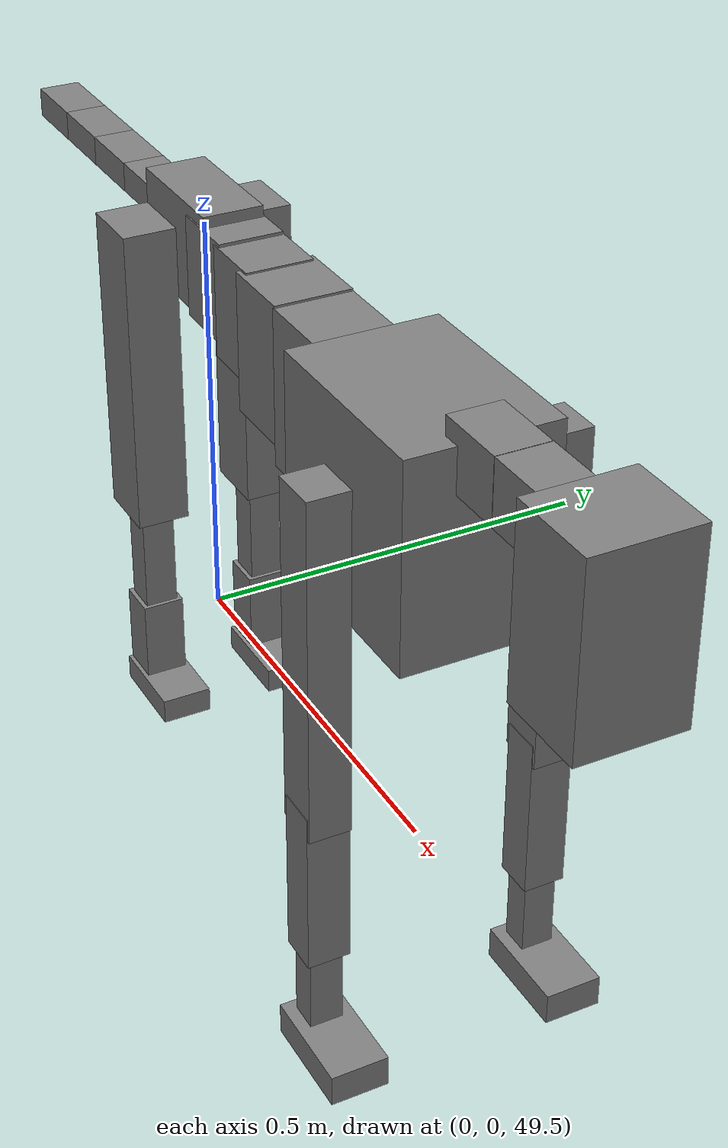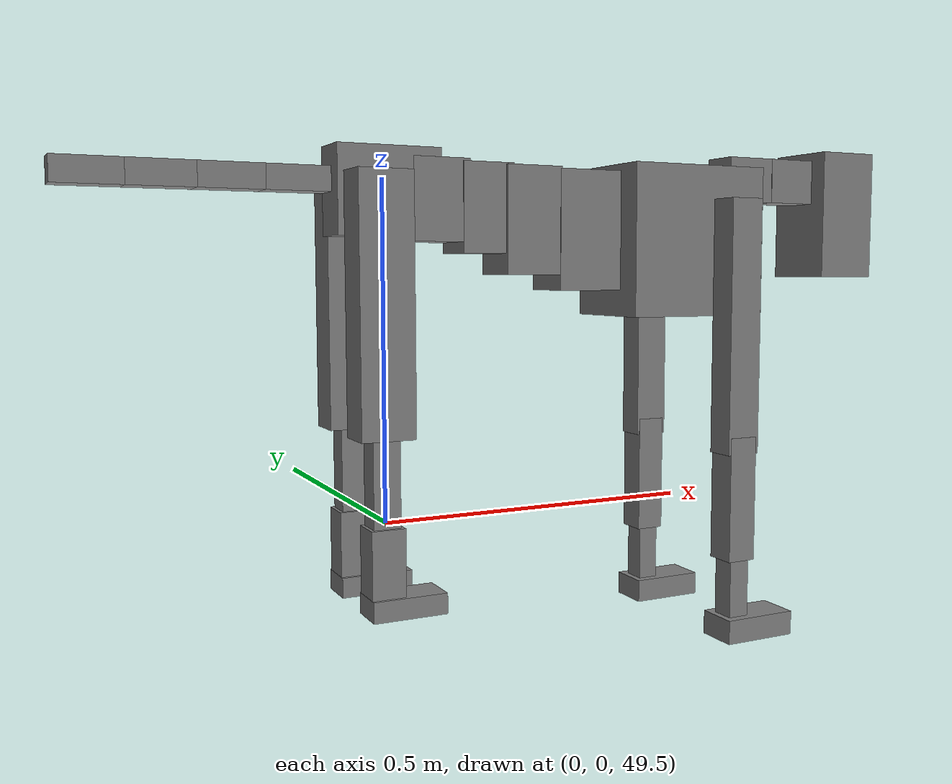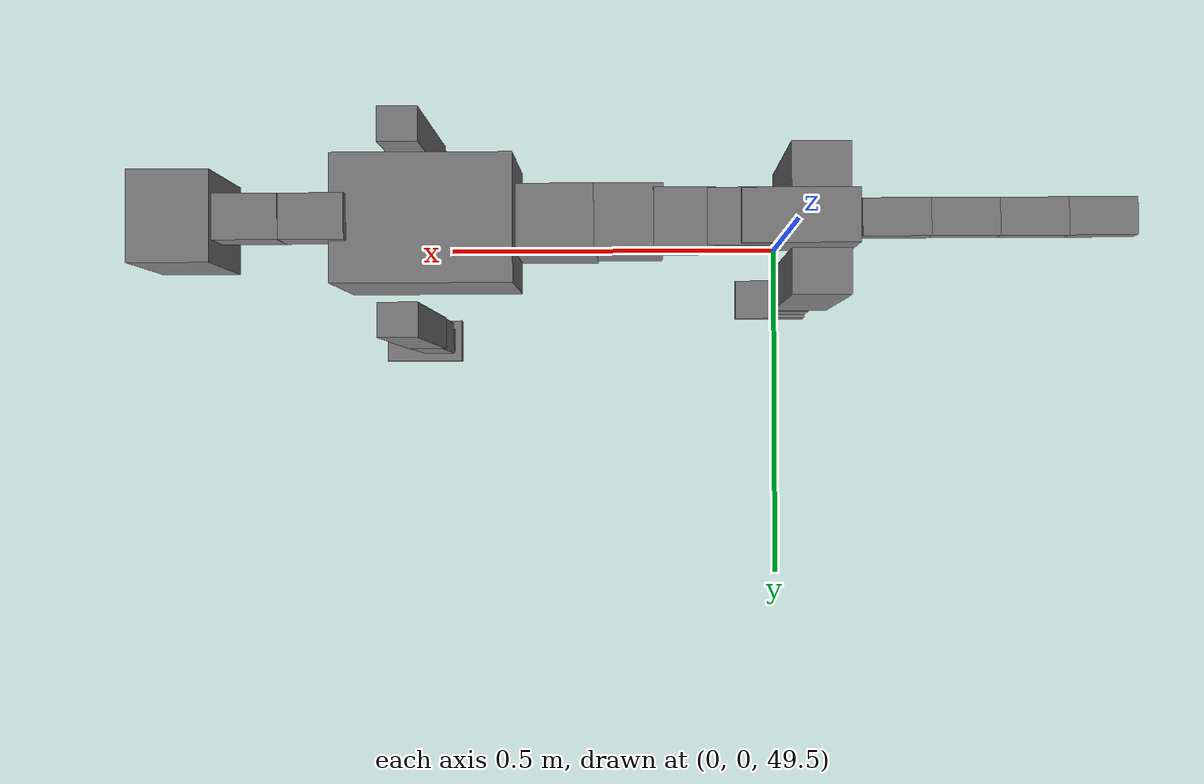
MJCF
<mujoco model="dog">

    <default>
        <joint armature="0.02" stiffness="1" damping="0.2" limited="true"/>
        <geom condim="3" friction="1 0.05 0.05" margin="0.01"/>
        <motor ctrllimited="true" ctrlrange="-1.0 1.0" forcelimited="true" gear="50"/>
    </default>

    <compiler inertiafromgeom="true" angle="radian"/>

    <option timestep="0.016" iterations="50" tolerance="1e-10" solver="Newton" jacobian="dense" cone="pyramidal"/>

    <size nconmax="20000" njmax="60000" nstack="5000000"/>
    <visual>
        <map force="0.1" zfar="30"/>
        <rgba haze="0.15 0.25 0.35 1"/>
        <quality shadowsize="2048"/>
        <global offwidth="800" offheight="800"/>
    </visual>

    <asset>
        <texture type="skybox" builtin="gradient" rgb1="0.3 0.5 0.7" rgb2="0 0 0" width="512" height="512"/>
        <texture name="texplane" type="2d" builtin="checker" rgb1=".2 .3 .4" rgb2=".1 0.15 0.2" width="512" height="512"
                 mark="cross" markrgb=".8 .8 .8"/>
        <texture name="texgeom" type="cube" builtin="flat" mark="cross" width="127" height="1278" rgb1="0.8 0.6 0.4"
                 rgb2="0.8 0.6 0.4" markrgb="1 1 1" random="0.01"/>

        <material name="matplane" reflectance="0.3" texture="texplane" texrepeat="1 1" texuniform="true"/>
        <material name="matgeom" texture="texgeom" texuniform="true" rgba="0.8 0.6 .4 1"/>
    </asset>

    <worldbody>
        <geom name="floor" pos="0 0 0" size="0 0 .25" type="plane" material="matplane" condim="3"/>

        <light directional="false" diffuse=".2 .2 .2" specular="0 0 0" pos="0 0 5" dir="0 0 -1" castshadow="false"/>
        <light mode="targetbodycom" target="torso" directional="false" diffuse=".8 .8 .8" specular="0.3 0.3 0.3"
               pos="0 0 4.0" dir="0 0 -1"/>

        <body name="root" pos="0 0 50">
            <freejoint name="root_1"/>
            <geom type="box" pos="0 0 -0.02" size="0.0774  0.0358  0.063" density="2030"/>

            <body name="spine1" pos="0.054 0 0">
                <joint name="spine1_y" axis="0 1 0" range="0 0.7" limited="true"/>
                <geom type="box" pos="0.02375 0 -0.03" size="0.04375  0.0375  0.05985" density="2030"/>

                <body name="spine2" pos="0.0612 0 0">
                    <joint name="spine2_y" axis="0 1 0" range="-0.15 0.15" limited="true"/>
                    <geom type="box" pos="0.03555  0  -0.04" size="0.04055  0.039  0.06615" density="2030"/>

                    <body name="spine3" pos="0.0730 0 0">
                        <joint name="spine3_y" axis="0 1 0" range="-0.15 0.15" limited="true"/>
                        <geom type="box" pos="0.03555  0  -0.057" size="0.04555  0.0445  0.081" density="2030"/>

                        <body name="spine4" pos="0.0780 0 0">
                            <joint name="spine4_y" axis="0 1 0" range="-0.15 0.15" limited="true"/>
                            <geom type="box" pos="0.05265  0  -0.07" size="0.05265  0.045  0.09135" density="2030"/>

                            <body name="torso" pos="0.1082 0 0">
                                <joint name="torso_y" axis="0 1 0" range="-0.15 0.15" limited="true"/>
                                <geom type="box" pos="0.11925  0  -0.085" size="0.11925  0.085  0.11745"
                                      density="2030"/>

                                <body name="neck1" pos="0.2160  0   0.0180">
                                    <joint name="neck1_y" axis="0 1 0" range="-1.2  -1" limited="true"/>
                                    <geom type="box" pos="0.0423  0  0" size="0.0423  0.03  0.036" density="2325"/>

                                    <body name="neck2" pos="0.0853  0  0">
                                        <joint name="neck2_y" axis="0 1 0" range="0.1  0" limited="true"/>
                                        <geom type="box" pos="0.0423  0  0" size="0.0423  0.03  0.036" density="2325"/>

                                        <body name="head" pos="0.0853  0  0">
                                            <joint name="head_y" axis="0 1 0" range="-0.3  -0.2" limited="true"/>
                                            <geom type="box" pos="0.0531  0  -0.055" size="0.0531  0.06  0.1044"
                                                  density="4030"/>

                                        </body>
                                    </body>
                                </body>

                                <body name="front_shoulder" pos="0.156  0   -0.0480">
                                    <joint name="front_shoulder_y" axis="0 1 0" range="-1 1.5" limited="true"/>
                                    <geom type="box" pos="0 0.13 -0.1704" size="0.0274  0.0235  0.1971" density="1158"/>
                                    <geom type="box" pos="0 -0.13 -0.1704" size="0.0274  0.0235  0.1971"
                                          density="1158"/>

                                    <body name="front_elbow" pos="0  0  -0.3408">
                                        <joint name="front_elbow_y" axis="0 1 0" range="-2 0" limited="true"/>
                                        <geom type="box" pos="0 0.13 -0.0974" size="0.0235  0.0241  0.0974"
                                              density="1081"/>
                                        <geom type="box" pos="0 -0.13 -0.0974" size="0.0235  0.0241  0.0974"
                                              density="1081"/>

                                        <body name="front_wrist" pos="0  0  -0.1948">
                                            <joint name="front_wrist_y" axis="0 1 0" range="-0.2 0" limited="true"/>
                                            <geom type="box" pos="0 0.13 -0.0527" size="0.0169  0.0188  0.0658"
                                                  density="1664"/>
                                            <geom type="box" pos="0 -0.13 -0.0527" size="0.0169  0.0188  0.0658"
                                                  density="1664"/>

                                            <body name="front_finger_end" pos="0  0  -0.1053">
                                                <joint name="front_finger_y" axis="0 1 0" range="-0.4 1"
                                                       limited="true"/>
                                                <geom type="box" pos="0.0331  0.13  -0.0038"
                                                      size="0.0606  0.0331  0.0188" density="1515"/>
                                                <geom type="box" pos="0.0331  -0.13  -0.0038"
                                                      size="0.0606  0.0331  0.0188" density="1515"/>

                                            </body>

                                        </body>
                                    </body>
                                </body>

                            </body>
                        </body>
                    </body>
                </body>
            </body>

            <body name="back_hip" pos="-0.03 0 -0.018">
                <joint name="back_hip_y" axis="0 1 0" range="-1.5 0.3" limited="true"/>
                <geom type="box" pos="0 0.07 -0.1617" size="0.0396  0.0311  0.1845" density="1154"/>
                <geom type="box" pos="0 -0.07 -0.1617" size="0.0396  0.0311  0.1845" density="1154"/>

                <body name="back_knee" pos="0  0  -0.3234">
                    <joint name="back_knee_y" axis="0 1 0" range="0 2.8" limited="true"/>
                    <geom type="box" pos="0 0.07 -0.0792" size="0.0199  0.0196  0.0948" density="1227"/>
                    <geom type="box" pos="0 -0.07 -0.0792" size="0.0199  0.0196  0.0948" density="1227"/>

                    <body name="back_ankle" pos="0  0  -0.1584">
                        <joint name="back_ankle_y" axis="0 1 0" range="-2.2 0" limited="true"/>
                        <geom type="box" pos="0 0.07 -0.0508" size="0.0249  0.0249  0.0621" density="1284"/>
                        <geom type="box" pos="0 -0.07 -0.0508" size="0.0249  0.0249  0.0621" density="1284"/>

                        <body name="back_toe_end" pos="0  0  -0.1017">
                            <joint name="back_toe_y" axis="0 1 0" range="-0.4 1" limited="true"/>
                            <geom type="box" pos="0.0300  0.07  -0.0002" size="0.0550  0.0300  0.0152" density="1515"/>
                            <geom type="box" pos="0.0300  -0.07  -0.0002" size="0.0550  0.0300  0.0152" density="1515"/>

                        </body>
                    </body>
                </body>
            </body>

            <body name="tail1" pos="-0.074 0 -0.006">
                <joint name="tail1_y" axis="0 1 0" range="-0.2 0.2" limited="true"/>
                <geom type="box" pos="-0.0536  0  0" size="0.045  0.025  0.0175" density="1587"/>

                <body name="tail2" pos="-0.09 0 0">
                    <joint name="tail2_y" axis="0 1 0" range="-0.2 0.2" limited="true"/>
                    <geom type="box" pos="-0.0536  0  0" size="0.045  0.025  0.0175" density="1587"/>

                    <body name="tail3" pos="-0.09 0 0">
                        <joint name="tail3_y" axis="0 1 0" range="-0.2 0.2" limited="true"/>
                        <geom type="box" pos="-0.0536  0  0" size="0.045  0.025  0.0175" density="1587"/>

                        <body name="tail4" pos="-0.09 0 0">
                            <joint name="tail4_y" axis="0 1 0" range="-0.2 0.2" limited="true"/>
                            <geom type="box" pos="-0.0536  0  0" size="0.045  0.025  0.0175" density="1587"/>

                        </body>
                    </body>
                </body>
            </body>
        </body>
    </worldbody>

    <actuator>
        <motor joint="spine1_y" forcerange="-150 150     "/>
        <motor joint="spine2_y" forcerange="-150 150     "/>
        <motor joint="spine3_y" forcerange="-150 150     "/>
        <motor joint="spine4_y" forcerange="-150 150     "/>
        <motor joint="torso_y" forcerange="-150 150     "/>
        <motor joint="neck1_y" forcerange="-100 100       "/>
        <motor joint="neck2_y" forcerange="-100 100       "/>
        <motor joint="head_y" forcerange="-150 150       "/>
        <motor joint="front_shoulder_y" forcerange="-131.03 125.35"/>
        <motor joint="front_elbow_y" forcerange="-116.36 158.73"/>
        <motor joint="front_wrist_y" forcerange="-75.75 74.33"/>
        <motor joint="front_finger_y" forcerange="-67.85 68.57"/>
        <motor joint="back_hip_y" forcerange="-360.99 253.64"/>
        <motor joint="back_knee_y" forcerange="-224.38 261.04"/>
        <motor joint="back_angle_y" forcerange="-215.04 83.06"/>
        <motor joint="back_toe_y" forcerange="-130.12 29.97"/>
        <motor joint="tail1_y" forcerange="-50 50     "/>
        <motor joint="tail2_y" forcerange="-50 50     "/>
        <motor joint="tail3_y" forcerange="-50 50     "/>
        <motor joint="tail4_y" forcerange="-50 50     "/>
    </actuator>
</mujoco>
